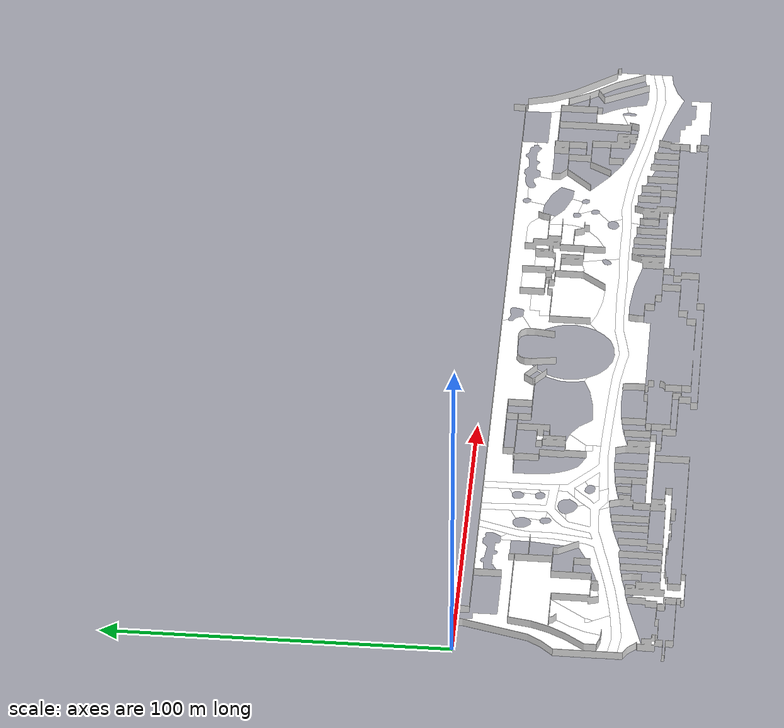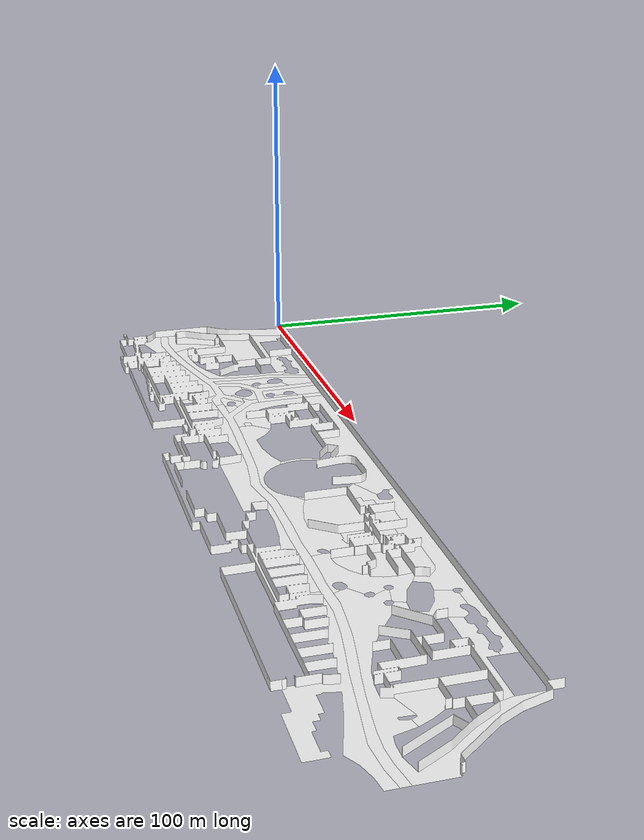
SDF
<sdf version="1.7">
 <model name="airport_terminal_L1">
  <static>true</static>
  <link name="floor_41">
   <visual name="visual">
    <geometry><mesh><uri>model://airport_terminal_L1/meshes/floor_41.obj</uri></mesh></geometry>
    <material>
     <diffuse>1.0 1.0 1.0</diffuse>
     <specular>0.1 0.1 0.1</specular>
     <pbr>
      <metal>
       <metalness>0.0</metalness>
       <albedo_map>model://airport_terminal_L1/meshes/white_marble.png</albedo_map>
      </metal>
     </pbr>
     <script><uri>model://airport_terminal_L1/meshes/</uri><name>floor_41_Diffuse</name></script>
    </material>
   </visual>
   <collision name="collision">
    <geometry><mesh><uri>model://airport_terminal_L1/meshes/floor_41.obj</uri></mesh></geometry>
    <surface><contact><collide_bitmask>0x01</collide_bitmask></contact></surface>
   </collision>
  </link>
  <link name="floor_42">
   <visual name="visual">
    <geometry><mesh><uri>model://airport_terminal_L1/meshes/floor_42.obj</uri></mesh></geometry>
    <material>
     <diffuse>1.0 1.0 1.0</diffuse>
     <specular>0.1 0.1 0.1</specular>
     <pbr>
      <metal>
       <metalness>0.0</metalness>
       <albedo_map>model://airport_terminal_L1/meshes/beige_tiles.png</albedo_map>
      </metal>
     </pbr>
     <script><uri>model://airport_terminal_L1/meshes/</uri><name>floor_42_Diffuse</name></script>
    </material>
   </visual>
   <collision name="collision">
    <geometry><mesh><uri>model://airport_terminal_L1/meshes/floor_42.obj</uri></mesh></geometry>
    <surface><contact><collide_bitmask>0x01</collide_bitmask></contact></surface>
   </collision>
  </link>
  <link name="floor_43">
   <visual name="visual">
    <geometry><mesh><uri>model://airport_terminal_L1/meshes/floor_43.obj</uri></mesh></geometry>
    <material>
     <diffuse>1.0 1.0 1.0</diffuse>
     <specular>0.1 0.1 0.1</specular>
     <pbr>
      <metal>
       <metalness>0.0</metalness>
       <albedo_map>model://airport_terminal_L1/meshes/concrete2.png</albedo_map>
      </metal>
     </pbr>
     <script><uri>model://airport_terminal_L1/meshes/</uri><name>floor_43_Diffuse</name></script>
    </material>
   </visual>
   <collision name="collision">
    <geometry><mesh><uri>model://airport_terminal_L1/meshes/floor_43.obj</uri></mesh></geometry>
    <surface><contact><collide_bitmask>0x01</collide_bitmask></contact></surface>
   </collision>
  </link>
  <link name="floor_44">
   <visual name="visual">
    <geometry><mesh><uri>model://airport_terminal_L1/meshes/floor_44.obj</uri></mesh></geometry>
    <material>
     <diffuse>1.0 1.0 1.0</diffuse>
     <specular>0.1 0.1 0.1</specular>
     <pbr>
      <metal>
       <metalness>0.0</metalness>
       <albedo_map>model://airport_terminal_L1/meshes/concrete2.png</albedo_map>
      </metal>
     </pbr>
     <script><uri>model://airport_terminal_L1/meshes/</uri><name>floor_44_Diffuse</name></script>
    </material>
   </visual>
   <collision name="collision">
    <geometry><mesh><uri>model://airport_terminal_L1/meshes/floor_44.obj</uri></mesh></geometry>
    <surface><contact><collide_bitmask>0x01</collide_bitmask></contact></surface>
   </collision>
  </link>
  <link name="floor_45">
   <visual name="visual">
    <geometry><mesh><uri>model://airport_terminal_L1/meshes/floor_45.obj</uri></mesh></geometry>
    <material>
     <diffuse>1.0 1.0 1.0</diffuse>
     <specular>0.1 0.1 0.1</specular>
     <pbr>
      <metal>
       <metalness>0.0</metalness>
       <albedo_map>model://airport_terminal_L1/meshes/concrete2.png</albedo_map>
      </metal>
     </pbr>
     <script><uri>model://airport_terminal_L1/meshes/</uri><name>floor_45_Diffuse</name></script>
    </material>
   </visual>
   <collision name="collision">
    <geometry><mesh><uri>model://airport_terminal_L1/meshes/floor_45.obj</uri></mesh></geometry>
    <surface><contact><collide_bitmask>0x01</collide_bitmask></contact></surface>
   </collision>
  </link>
  <link name="floor_46">
   <visual name="visual">
    <geometry><mesh><uri>model://airport_terminal_L1/meshes/floor_46.obj</uri></mesh></geometry>
    <material>
     <diffuse>1.0 1.0 1.0</diffuse>
     <specular>0.1 0.1 0.1</specular>
     <pbr>
      <metal>
       <metalness>0.0</metalness>
       <albedo_map>model://airport_terminal_L1/meshes/white_marble.png</albedo_map>
      </metal>
     </pbr>
     <script><uri>model://airport_terminal_L1/meshes/</uri><name>floor_46_Diffuse</name></script>
    </material>
   </visual>
   <collision name="collision">
    <geometry><mesh><uri>model://airport_terminal_L1/meshes/floor_46.obj</uri></mesh></geometry>
    <surface><contact><collide_bitmask>0x01</collide_bitmask></contact></surface>
   </collision>
  </link>
  <link name="floor_47">
   <visual name="visual">
    <geometry><mesh><uri>model://airport_terminal_L1/meshes/floor_47.obj</uri></mesh></geometry>
    <material>
     <diffuse>1.0 1.0 1.0</diffuse>
     <specular>0.1 0.1 0.1</specular>
     <pbr>
      <metal>
       <metalness>0.0</metalness>
       <albedo_map>model://airport_terminal_L1/meshes/concrete2.png</albedo_map>
      </metal>
     </pbr>
     <script><uri>model://airport_terminal_L1/meshes/</uri><name>floor_47_Diffuse</name></script>
    </material>
   </visual>
   <collision name="collision">
    <geometry><mesh><uri>model://airport_terminal_L1/meshes/floor_47.obj</uri></mesh></geometry>
    <surface><contact><collide_bitmask>0x01</collide_bitmask></contact></surface>
   </collision>
  </link>
  <link name="floor_48">
   <visual name="visual">
    <geometry><mesh><uri>model://airport_terminal_L1/meshes/floor_48.obj</uri></mesh></geometry>
    <material>
     <diffuse>1.0 1.0 1.0</diffuse>
     <specular>0.1 0.1 0.1</specular>
     <pbr>
      <metal>
       <metalness>0.0</metalness>
       <albedo_map>model://airport_terminal_L1/meshes/concrete2.png</albedo_map>
      </metal>
     </pbr>
     <script><uri>model://airport_terminal_L1/meshes/</uri><name>floor_48_Diffuse</name></script>
    </material>
   </visual>
   <collision name="collision">
    <geometry><mesh><uri>model://airport_terminal_L1/meshes/floor_48.obj</uri></mesh></geometry>
    <surface><contact><collide_bitmask>0x01</collide_bitmask></contact></surface>
   </collision>
  </link>
  <link name="floor_49">
   <visual name="visual">
    <geometry><mesh><uri>model://airport_terminal_L1/meshes/floor_49.obj</uri></mesh></geometry>
    <material>
     <diffuse>1.0 1.0 1.0</diffuse>
     <specular>0.1 0.1 0.1</specular>
     <pbr>
      <metal>
       <metalness>0.0</metalness>
       <albedo_map>model://airport_terminal_L1/meshes/concrete2.png</albedo_map>
      </metal>
     </pbr>
     <script><uri>model://airport_terminal_L1/meshes/</uri><name>floor_49_Diffuse</name></script>
    </material>
   </visual>
   <collision name="collision">
    <geometry><mesh><uri>model://airport_terminal_L1/meshes/floor_49.obj</uri></mesh></geometry>
    <surface><contact><collide_bitmask>0x01</collide_bitmask></contact></surface>
   </collision>
  </link>
  <link name="floor_50">
   <visual name="visual">
    <geometry><mesh><uri>model://airport_terminal_L1/meshes/floor_50.obj</uri></mesh></geometry>
    <material>
     <diffuse>1.0 1.0 1.0</diffuse>
     <specular>0.1 0.1 0.1</specular>
     <pbr>
      <metal>
       <metalness>0.0</metalness>
       <albedo_map>model://airport_terminal_L1/meshes/white_marble.png</albedo_map>
      </metal>
     </pbr>
     <script><uri>model://airport_terminal_L1/meshes/</uri><name>floor_50_Diffuse</name></script>
    </material>
   </visual>
   <collision name="collision">
    <geometry><mesh><uri>model://airport_terminal_L1/meshes/floor_50.obj</uri></mesh></geometry>
    <surface><contact><collide_bitmask>0x01</collide_bitmask></contact></surface>
   </collision>
  </link>
  <link name="floor_51">
   <visual name="visual">
    <geometry><mesh><uri>model://airport_terminal_L1/meshes/floor_51.obj</uri></mesh></geometry>
    <material>
     <diffuse>1.0 1.0 1.0</diffuse>
     <specular>0.1 0.1 0.1</specular>
     <pbr>
      <metal>
       <metalness>0.0</metalness>
       <albedo_map>model://airport_terminal_L1/meshes/white_marble.png</albedo_map>
      </metal>
     </pbr>
     <script><uri>model://airport_terminal_L1/meshes/</uri><name>floor_51_Diffuse</name></script>
    </material>
   </visual>
   <collision name="collision">
    <geometry><mesh><uri>model://airport_terminal_L1/meshes/floor_51.obj</uri></mesh></geometry>
    <surface><contact><collide_bitmask>0x01</collide_bitmask></contact></surface>
   </collision>
  </link>
  <link name="floor_52">
   <visual name="visual">
    <geometry><mesh><uri>model://airport_terminal_L1/meshes/floor_52.obj</uri></mesh></geometry>
    <material>
     <diffuse>1.0 1.0 1.0</diffuse>
     <specular>0.1 0.1 0.1</specular>
     <pbr>
      <metal>
       <metalness>0.0</metalness>
       <albedo_map>model://airport_terminal_L1/meshes/white_marble.png</albedo_map>
      </metal>
     </pbr>
     <script><uri>model://airport_terminal_L1/meshes/</uri><name>floor_52_Diffuse</name></script>
    </material>
   </visual>
   <collision name="collision">
    <geometry><mesh><uri>model://airport_terminal_L1/meshes/floor_52.obj</uri></mesh></geometry>
    <surface><contact><collide_bitmask>0x01</collide_bitmask></contact></surface>
   </collision>
  </link>
  <link name="floor_53">
   <visual name="visual">
    <geometry><mesh><uri>model://airport_terminal_L1/meshes/floor_53.obj</uri></mesh></geometry>
    <material>
     <diffuse>1.0 1.0 1.0</diffuse>
     <specular>0.1 0.1 0.1</specular>
     <pbr>
      <metal>
       <metalness>0.0</metalness>
       <albedo_map>model://airport_terminal_L1/meshes/white_marble.png</albedo_map>
      </metal>
     </pbr>
     <script><uri>model://airport_terminal_L1/meshes/</uri><name>floor_53_Diffuse</name></script>
    </material>
   </visual>
   <collision name="collision">
    <geometry><mesh><uri>model://airport_terminal_L1/meshes/floor_53.obj</uri></mesh></geometry>
    <surface><contact><collide_bitmask>0x01</collide_bitmask></contact></surface>
   </collision>
  </link>
  <link name="floor_54">
   <visual name="visual">
    <geometry><mesh><uri>model://airport_terminal_L1/meshes/floor_54.obj</uri></mesh></geometry>
    <material>
     <diffuse>1.0 1.0 1.0</diffuse>
     <specular>0.1 0.1 0.1</specular>
     <pbr>
      <metal>
       <metalness>0.0</metalness>
       <albedo_map>model://airport_terminal_L1/meshes/brown_marble.png</albedo_map>
      </metal>
     </pbr>
     <script><uri>model://airport_terminal_L1/meshes/</uri><name>floor_54_Diffuse</name></script>
    </material>
   </visual>
   <collision name="collision">
    <geometry><mesh><uri>model://airport_terminal_L1/meshes/floor_54.obj</uri></mesh></geometry>
    <surface><contact><collide_bitmask>0x01</collide_bitmask></contact></surface>
   </collision>
  </link>
  <link name="floor_55">
   <visual name="visual">
    <geometry><mesh><uri>model://airport_terminal_L1/meshes/floor_55.obj</uri></mesh></geometry>
    <material>
     <diffuse>1.0 1.0 1.0</diffuse>
     <specular>0.1 0.1 0.1</specular>
     <pbr>
      <metal>
       <metalness>0.0</metalness>
       <albedo_map>model://airport_terminal_L1/meshes/brown_marble.png</albedo_map>
      </metal>
     </pbr>
     <script><uri>model://airport_terminal_L1/meshes/</uri><name>floor_55_Diffuse</name></script>
    </material>
   </visual>
   <collision name="collision">
    <geometry><mesh><uri>model://airport_terminal_L1/meshes/floor_55.obj</uri></mesh></geometry>
    <surface><contact><collide_bitmask>0x01</collide_bitmask></contact></surface>
   </collision>
  </link>
  <link name="floor_56">
   <visual name="visual">
    <geometry><mesh><uri>model://airport_terminal_L1/meshes/floor_56.obj</uri></mesh></geometry>
    <material>
     <diffuse>1.0 1.0 1.0</diffuse>
     <specular>0.1 0.1 0.1</specular>
     <pbr>
      <metal>
       <metalness>0.0</metalness>
       <albedo_map>model://airport_terminal_L1/meshes/white_marble.png</albedo_map>
      </metal>
     </pbr>
     <script><uri>model://airport_terminal_L1/meshes/</uri><name>floor_56_Diffuse</name></script>
    </material>
   </visual>
   <collision name="collision">
    <geometry><mesh><uri>model://airport_terminal_L1/meshes/floor_56.obj</uri></mesh></geometry>
    <surface><contact><collide_bitmask>0x01</collide_bitmask></contact></surface>
   </collision>
  </link>
  <link name="floor_57">
   <visual name="visual">
    <geometry><mesh><uri>model://airport_terminal_L1/meshes/floor_57.obj</uri></mesh></geometry>
    <material>
     <diffuse>1.0 1.0 1.0</diffuse>
     <specular>0.1 0.1 0.1</specular>
     <pbr>
      <metal>
       <metalness>0.0</metalness>
       <albedo_map>model://airport_terminal_L1/meshes/white_marble.png</albedo_map>
      </metal>
     </pbr>
     <script><uri>model://airport_terminal_L1/meshes/</uri><name>floor_57_Diffuse</name></script>
    </material>
   </visual>
   <collision name="collision">
    <geometry><mesh><uri>model://airport_terminal_L1/meshes/floor_57.obj</uri></mesh></geometry>
    <surface><contact><collide_bitmask>0x01</collide_bitmask></contact></surface>
   </collision>
  </link>
  <link name="floor_58">
   <visual name="visual">
    <geometry><mesh><uri>model://airport_terminal_L1/meshes/floor_58.obj</uri></mesh></geometry>
    <material>
     <diffuse>1.0 1.0 1.0</diffuse>
     <specular>0.1 0.1 0.1</specular>
     <pbr>
      <metal>
       <metalness>0.0</metalness>
       <albedo_map>model://airport_terminal_L1/meshes/white_marble.png</albedo_map>
      </metal>
     </pbr>
     <script><uri>model://airport_terminal_L1/meshes/</uri><name>floor_58_Diffuse</name></script>
    </material>
   </visual>
   <collision name="collision">
    <geometry><mesh><uri>model://airport_terminal_L1/meshes/floor_58.obj</uri></mesh></geometry>
    <surface><contact><collide_bitmask>0x01</collide_bitmask></contact></surface>
   </collision>
  </link>
  <link name="floor_59">
   <visual name="visual">
    <geometry><mesh><uri>model://airport_terminal_L1/meshes/floor_59.obj</uri></mesh></geometry>
    <material>
     <diffuse>1.0 1.0 1.0</diffuse>
     <specular>0.1 0.1 0.1</specular>
     <pbr>
      <metal>
       <metalness>0.0</metalness>
       <albedo_map>model://airport_terminal_L1/meshes/white_marble.png</albedo_map>
      </metal>
     </pbr>
     <script><uri>model://airport_terminal_L1/meshes/</uri><name>floor_59_Diffuse</name></script>
    </material>
   </visual>
   <collision name="collision">
    <geometry><mesh><uri>model://airport_terminal_L1/meshes/floor_59.obj</uri></mesh></geometry>
    <surface><contact><collide_bitmask>0x01</collide_bitmask></contact></surface>
   </collision>
  </link>
  <link name="floor_60">
   <visual name="visual">
    <geometry><mesh><uri>model://airport_terminal_L1/meshes/floor_60.obj</uri></mesh></geometry>
    <material>
     <diffuse>1.0 1.0 1.0</diffuse>
     <specular>0.1 0.1 0.1</specular>
     <pbr>
      <metal>
       <metalness>0.0</metalness>
       <albedo_map>model://airport_terminal_L1/meshes/white_marble.png</albedo_map>
      </metal>
     </pbr>
     <script><uri>model://airport_terminal_L1/meshes/</uri><name>floor_60_Diffuse</name></script>
    </material>
   </visual>
   <collision name="collision">
    <geometry><mesh><uri>model://airport_terminal_L1/meshes/floor_60.obj</uri></mesh></geometry>
    <surface><contact><collide_bitmask>0x01</collide_bitmask></contact></surface>
   </collision>
  </link>
  <link name="floor_61">
   <visual name="visual">
    <geometry><mesh><uri>model://airport_terminal_L1/meshes/floor_61.obj</uri></mesh></geometry>
    <material>
     <diffuse>1.0 1.0 1.0</diffuse>
     <specular>0.1 0.1 0.1</specular>
     <pbr>
      <metal>
       <metalness>0.0</metalness>
       <albedo_map>model://airport_terminal_L1/meshes/white_marble.png</albedo_map>
      </metal>
     </pbr>
     <script><uri>model://airport_terminal_L1/meshes/</uri><name>floor_61_Diffuse</name></script>
    </material>
   </visual>
   <collision name="collision">
    <geometry><mesh><uri>model://airport_terminal_L1/meshes/floor_61.obj</uri></mesh></geometry>
    <surface><contact><collide_bitmask>0x01</collide_bitmask></contact></surface>
   </collision>
  </link>
  <link name="floor_62">
   <visual name="visual">
    <geometry><mesh><uri>model://airport_terminal_L1/meshes/floor_62.obj</uri></mesh></geometry>
    <material>
     <diffuse>1.0 1.0 1.0</diffuse>
     <specular>0.1 0.1 0.1</specular>
     <pbr>
      <metal>
       <metalness>0.0</metalness>
       <albedo_map>model://airport_terminal_L1/meshes/white_marble.png</albedo_map>
      </metal>
     </pbr>
     <script><uri>model://airport_terminal_L1/meshes/</uri><name>floor_62_Diffuse</name></script>
    </material>
   </visual>
   <collision name="collision">
    <geometry><mesh><uri>model://airport_terminal_L1/meshes/floor_62.obj</uri></mesh></geometry>
    <surface><contact><collide_bitmask>0x01</collide_bitmask></contact></surface>
   </collision>
  </link>
  <link name="floor_63">
   <visual name="visual">
    <geometry><mesh><uri>model://airport_terminal_L1/meshes/floor_63.obj</uri></mesh></geometry>
    <material>
     <diffuse>1.0 1.0 1.0</diffuse>
     <specular>0.1 0.1 0.1</specular>
     <pbr>
      <metal>
       <metalness>0.0</metalness>
       <albedo_map>model://airport_terminal_L1/meshes/white_marble.png</albedo_map>
      </metal>
     </pbr>
     <script><uri>model://airport_terminal_L1/meshes/</uri><name>floor_63_Diffuse</name></script>
    </material>
   </visual>
   <collision name="collision">
    <geometry><mesh><uri>model://airport_terminal_L1/meshes/floor_63.obj</uri></mesh></geometry>
    <surface><contact><collide_bitmask>0x01</collide_bitmask></contact></surface>
   </collision>
  </link>
  <link name="floor_64">
   <visual name="visual">
    <geometry><mesh><uri>model://airport_terminal_L1/meshes/floor_64.obj</uri></mesh></geometry>
    <material>
     <diffuse>1.0 1.0 1.0</diffuse>
     <specular>0.1 0.1 0.1</specular>
     <pbr>
      <metal>
       <metalness>0.0</metalness>
       <albedo_map>model://airport_terminal_L1/meshes/white_marble.png</albedo_map>
      </metal>
     </pbr>
     <script><uri>model://airport_terminal_L1/meshes/</uri><name>floor_64_Diffuse</name></script>
    </material>
   </visual>
   <collision name="collision">
    <geometry><mesh><uri>model://airport_terminal_L1/meshes/floor_64.obj</uri></mesh></geometry>
    <surface><contact><collide_bitmask>0x01</collide_bitmask></contact></surface>
   </collision>
  </link>
  <link name="floor_65">
   <visual name="visual">
    <geometry><mesh><uri>model://airport_terminal_L1/meshes/floor_65.obj</uri></mesh></geometry>
    <material>
     <diffuse>1.0 1.0 1.0</diffuse>
     <specular>0.1 0.1 0.1</specular>
     <pbr>
      <metal>
       <metalness>0.0</metalness>
       <albedo_map>model://airport_terminal_L1/meshes/white_marble.png</albedo_map>
      </metal>
     </pbr>
     <script><uri>model://airport_terminal_L1/meshes/</uri><name>floor_65_Diffuse</name></script>
    </material>
   </visual>
   <collision name="collision">
    <geometry><mesh><uri>model://airport_terminal_L1/meshes/floor_65.obj</uri></mesh></geometry>
    <surface><contact><collide_bitmask>0x01</collide_bitmask></contact></surface>
   </collision>
  </link>
  <link name="floor_66">
   <visual name="visual">
    <geometry><mesh><uri>model://airport_terminal_L1/meshes/floor_66.obj</uri></mesh></geometry>
    <material>
     <diffuse>1.0 1.0 1.0</diffuse>
     <specular>0.1 0.1 0.1</specular>
     <pbr>
      <metal>
       <metalness>0.0</metalness>
       <albedo_map>model://airport_terminal_L1/meshes/white_marble.png</albedo_map>
      </metal>
     </pbr>
     <script><uri>model://airport_terminal_L1/meshes/</uri><name>floor_66_Diffuse</name></script>
    </material>
   </visual>
   <collision name="collision">
    <geometry><mesh><uri>model://airport_terminal_L1/meshes/floor_66.obj</uri></mesh></geometry>
    <surface><contact><collide_bitmask>0x01</collide_bitmask></contact></surface>
   </collision>
  </link>
  <link name="floor_67">
   <visual name="visual">
    <geometry><mesh><uri>model://airport_terminal_L1/meshes/floor_67.obj</uri></mesh></geometry>
    <material>
     <diffuse>1.0 1.0 1.0</diffuse>
     <specular>0.1 0.1 0.1</specular>
     <pbr>
      <metal>
       <metalness>0.0</metalness>
       <albedo_map>model://airport_terminal_L1/meshes/white_marble.png</albedo_map>
      </metal>
     </pbr>
     <script><uri>model://airport_terminal_L1/meshes/</uri><name>floor_67_Diffuse</name></script>
    </material>
   </visual>
   <collision name="collision">
    <geometry><mesh><uri>model://airport_terminal_L1/meshes/floor_67.obj</uri></mesh></geometry>
    <surface><contact><collide_bitmask>0x01</collide_bitmask></contact></surface>
   </collision>
  </link>
  <link name="floor_68">
   <visual name="visual">
    <geometry><mesh><uri>model://airport_terminal_L1/meshes/floor_68.obj</uri></mesh></geometry>
    <material>
     <diffuse>1.0 1.0 1.0</diffuse>
     <specular>0.1 0.1 0.1</specular>
     <pbr>
      <metal>
       <metalness>0.0</metalness>
       <albedo_map>model://airport_terminal_L1/meshes/white_marble.png</albedo_map>
      </metal>
     </pbr>
     <script><uri>model://airport_terminal_L1/meshes/</uri><name>floor_68_Diffuse</name></script>
    </material>
   </visual>
   <collision name="collision">
    <geometry><mesh><uri>model://airport_terminal_L1/meshes/floor_68.obj</uri></mesh></geometry>
    <surface><contact><collide_bitmask>0x01</collide_bitmask></contact></surface>
   </collision>
  </link>
  <link name="floor_69">
   <visual name="visual">
    <geometry><mesh><uri>model://airport_terminal_L1/meshes/floor_69.obj</uri></mesh></geometry>
    <material>
     <diffuse>1.0 1.0 1.0</diffuse>
     <specular>0.1 0.1 0.1</specular>
     <pbr>
      <metal>
       <metalness>0.0</metalness>
       <albedo_map>model://airport_terminal_L1/meshes/white_marble.png</albedo_map>
      </metal>
     </pbr>
     <script><uri>model://airport_terminal_L1/meshes/</uri><name>floor_69_Diffuse</name></script>
    </material>
   </visual>
   <collision name="collision">
    <geometry><mesh><uri>model://airport_terminal_L1/meshes/floor_69.obj</uri></mesh></geometry>
    <surface><contact><collide_bitmask>0x01</collide_bitmask></contact></surface>
   </collision>
  </link>
  <link name="floor_70">
   <visual name="visual">
    <geometry><mesh><uri>model://airport_terminal_L1/meshes/floor_70.obj</uri></mesh></geometry>
    <material>
     <diffuse>1.0 1.0 1.0</diffuse>
     <specular>0.1 0.1 0.1</specular>
     <pbr>
      <metal>
       <metalness>0.0</metalness>
       <albedo_map>model://airport_terminal_L1/meshes/white_marble.png</albedo_map>
      </metal>
     </pbr>
     <script><uri>model://airport_terminal_L1/meshes/</uri><name>floor_70_Diffuse</name></script>
    </material>
   </visual>
   <collision name="collision">
    <geometry><mesh><uri>model://airport_terminal_L1/meshes/floor_70.obj</uri></mesh></geometry>
    <surface><contact><collide_bitmask>0x01</collide_bitmask></contact></surface>
   </collision>
  </link>
  <link name="floor_71">
   <visual name="visual">
    <geometry><mesh><uri>model://airport_terminal_L1/meshes/floor_71.obj</uri></mesh></geometry>
    <material>
     <diffuse>1.0 1.0 1.0</diffuse>
     <specular>0.1 0.1 0.1</specular>
     <pbr>
      <metal>
       <metalness>0.0</metalness>
       <albedo_map>model://airport_terminal_L1/meshes/white_marble.png</albedo_map>
      </metal>
     </pbr>
     <script><uri>model://airport_terminal_L1/meshes/</uri><name>floor_71_Diffuse</name></script>
    </material>
   </visual>
   <collision name="collision">
    <geometry><mesh><uri>model://airport_terminal_L1/meshes/floor_71.obj</uri></mesh></geometry>
    <surface><contact><collide_bitmask>0x01</collide_bitmask></contact></surface>
   </collision>
  </link>
  <link name="floor_72">
   <visual name="visual">
    <geometry><mesh><uri>model://airport_terminal_L1/meshes/floor_72.obj</uri></mesh></geometry>
    <material>
     <diffuse>1.0 1.0 1.0</diffuse>
     <specular>0.1 0.1 0.1</specular>
     <pbr>
      <metal>
       <metalness>0.0</metalness>
       <albedo_map>model://airport_terminal_L1/meshes/white_marble.png</albedo_map>
      </metal>
     </pbr>
     <script><uri>model://airport_terminal_L1/meshes/</uri><name>floor_72_Diffuse</name></script>
    </material>
   </visual>
   <collision name="collision">
    <geometry><mesh><uri>model://airport_terminal_L1/meshes/floor_72.obj</uri></mesh></geometry>
    <surface><contact><collide_bitmask>0x01</collide_bitmask></contact></surface>
   </collision>
  </link>
  <link name="floor_73">
   <visual name="visual">
    <geometry><mesh><uri>model://airport_terminal_L1/meshes/floor_73.obj</uri></mesh></geometry>
    <material>
     <diffuse>1.0 1.0 1.0</diffuse>
     <specular>0.1 0.1 0.1</specular>
     <pbr>
      <metal>
       <metalness>0.0</metalness>
       <albedo_map>model://airport_terminal_L1/meshes/white_marble.png</albedo_map>
      </metal>
     </pbr>
     <script><uri>model://airport_terminal_L1/meshes/</uri><name>floor_73_Diffuse</name></script>
    </material>
   </visual>
   <collision name="collision">
    <geometry><mesh><uri>model://airport_terminal_L1/meshes/floor_73.obj</uri></mesh></geometry>
    <surface><contact><collide_bitmask>0x01</collide_bitmask></contact></surface>
   </collision>
  </link>
  <link name="floor_74">
   <visual name="visual">
    <geometry><mesh><uri>model://airport_terminal_L1/meshes/floor_74.obj</uri></mesh></geometry>
    <material>
     <diffuse>1.0 1.0 1.0</diffuse>
     <specular>0.1 0.1 0.1</specular>
     <pbr>
      <metal>
       <metalness>0.0</metalness>
       <albedo_map>model://airport_terminal_L1/meshes/blue_linoleum_high_contrast.png</albedo_map>
      </metal>
     </pbr>
     <script><uri>model://airport_terminal_L1/meshes/</uri><name>floor_74_Diffuse</name></script>
    </material>
   </visual>
   <collision name="collision">
    <geometry><mesh><uri>model://airport_terminal_L1/meshes/floor_74.obj</uri></mesh></geometry>
    <surface><contact><collide_bitmask>0x01</collide_bitmask></contact></surface>
   </collision>
  </link>
  <link name="floor_75">
   <visual name="visual">
    <geometry><mesh><uri>model://airport_terminal_L1/meshes/floor_75.obj</uri></mesh></geometry>
    <material>
     <diffuse>1.0 1.0 1.0</diffuse>
     <specular>0.1 0.1 0.1</specular>
     <pbr>
      <metal>
       <metalness>0.0</metalness>
       <albedo_map>model://airport_terminal_L1/meshes/concrete2.png</albedo_map>
      </metal>
     </pbr>
     <script><uri>model://airport_terminal_L1/meshes/</uri><name>floor_75_Diffuse</name></script>
    </material>
   </visual>
   <collision name="collision">
    <geometry><mesh><uri>model://airport_terminal_L1/meshes/floor_75.obj</uri></mesh></geometry>
    <surface><contact><collide_bitmask>0x01</collide_bitmask></contact></surface>
   </collision>
  </link>
  <link name="wall_1">
   <visual name="wall_1">
    <geometry><mesh><uri>model://airport_terminal_L1/meshes/wall_1.obj</uri></mesh></geometry>
    <transparency>0.0</transparency>
    <material>
     <diffuse>1.0 1.0 1.0</diffuse>
     <specular>0.1 0.1 0.1</specular>
     <pbr>
      <metal>
       <metalness>0.0</metalness>
       <albedo_map>model://airport_terminal_L1/meshes/white_beige_tiles.png</albedo_map>
      </metal>
     </pbr>
     <script><uri>model://airport_terminal_L1/meshes/</uri><name>wall_1_Diffuse</name></script>
    </material>
   </visual>
   <collision name="collision">
    <geometry><mesh><uri>model://airport_terminal_L1/meshes/wall_1.obj</uri></mesh></geometry>
    <surface><contact><collide_bitmask>0x01</collide_bitmask></contact></surface>
   </collision>
   <pose>0.01288120439574092 -32.833952851714656 0 0 0 0</pose>
  </link>
  <link name="wall_3">
   <visual name="wall_3">
    <geometry><mesh><uri>model://airport_terminal_L1/meshes/wall_3.obj</uri></mesh></geometry>
    <transparency>0.0</transparency>
    <material>
     <diffuse>1.0 1.0 1.0</diffuse>
     <specular>0.1 0.1 0.1</specular>
     <pbr>
      <metal>
       <metalness>0.0</metalness>
       <albedo_map>model://airport_terminal_L1/meshes/concrete4.png</albedo_map>
      </metal>
     </pbr>
     <script><uri>model://airport_terminal_L1/meshes/</uri><name>wall_3_Diffuse</name></script>
    </material>
   </visual>
   <collision name="collision">
    <geometry><mesh><uri>model://airport_terminal_L1/meshes/wall_3.obj</uri></mesh></geometry>
    <surface><contact><collide_bitmask>0x01</collide_bitmask></contact></surface>
   </collision>
   <pose>2.8694567354429084 -64.26969048211527 0 0 0 0</pose>
  </link>
  <link name="wall_4">
   <visual name="wall_4">
    <geometry><mesh><uri>model://airport_terminal_L1/meshes/wall_4.obj</uri></mesh></geometry>
    <transparency>0.0</transparency>
    <material>
     <diffuse>1.0 1.0 1.0</diffuse>
     <specular>0.1 0.1 0.1</specular>
     <pbr>
      <metal>
       <metalness>0.0</metalness>
       <albedo_map>model://airport_terminal_L1/meshes/white_brick.png</albedo_map>
      </metal>
     </pbr>
     <script><uri>model://airport_terminal_L1/meshes/</uri><name>wall_4_Diffuse</name></script>
    </material>
   </visual>
   <collision name="collision">
    <geometry><mesh><uri>model://airport_terminal_L1/meshes/wall_4.obj</uri></mesh></geometry>
    <surface><contact><collide_bitmask>0x01</collide_bitmask></contact></surface>
   </collision>
   <pose>35.236389705849156 -64.24966099030931 0 0 0 0</pose>
  </link>
  <link name="wall_5">
   <visual name="wall_5">
    <geometry><mesh><uri>model://airport_terminal_L1/meshes/wall_5.obj</uri></mesh></geometry>
    <transparency>0.0</transparency>
    <material>
     <diffuse>1.0 1.0 1.0</diffuse>
     <specular>0.1 0.1 0.1</specular>
     <pbr>
      <metal><metalness>0.0</metalness><albedo_map>model://airport_terminal_L1/meshes/beige.png</albedo_map></metal>
     </pbr>
     <script><uri>model://airport_terminal_L1/meshes/</uri><name>wall_5_Diffuse</name></script>
    </material>
   </visual>
   <collision name="collision">
    <geometry><mesh><uri>model://airport_terminal_L1/meshes/wall_5.obj</uri></mesh></geometry>
    <surface><contact><collide_bitmask>0x01</collide_bitmask></contact></surface>
   </collision>
   <pose>0.0047138585768358165 -64.2758350663303 0 0 0 0</pose>
  </link>
  <link name="wall_6">
   <visual name="wall_6">
    <geometry><mesh><uri>model://airport_terminal_L1/meshes/wall_6.obj</uri></mesh></geometry>
    <transparency>0.0</transparency>
    <material>
     <diffuse>1.0 1.0 1.0</diffuse>
     <specular>0.1 0.1 0.1</specular>
     <pbr>
      <metal>
       <metalness>0.0</metalness>
       <albedo_map>model://airport_terminal_L1/meshes/carpark_walkway.png</albedo_map>
      </metal>
     </pbr>
     <script><uri>model://airport_terminal_L1/meshes/</uri><name>wall_6_Diffuse</name></script>
    </material>
   </visual>
   <collision name="collision">
    <geometry><mesh><uri>model://airport_terminal_L1/meshes/wall_6.obj</uri></mesh></geometry>
    <surface><contact><collide_bitmask>0x01</collide_bitmask></contact></surface>
   </collision>
   <pose>209.10982560598478 -59.663720414696094 0 0 0 0</pose>
  </link>
 </model>
</sdf>
